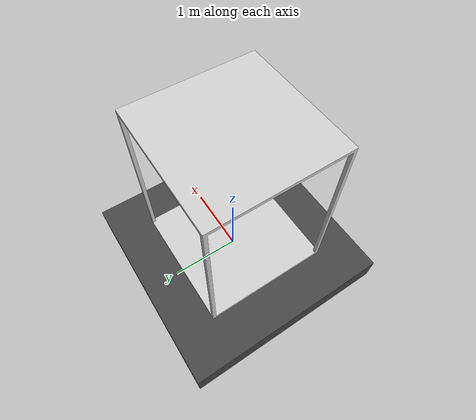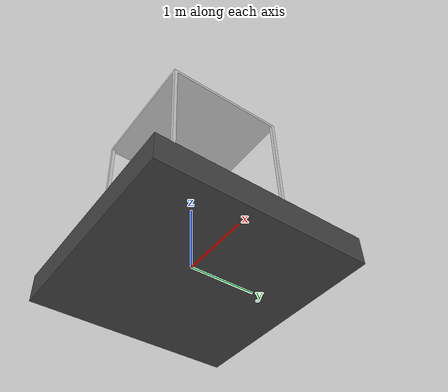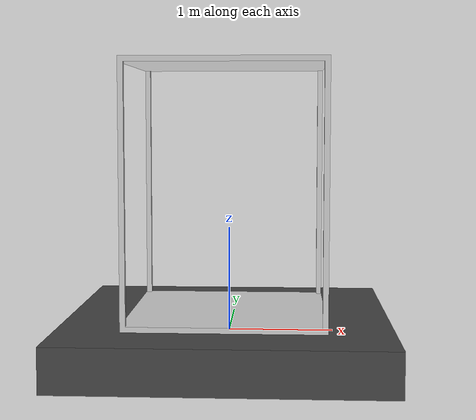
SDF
<?xml version="1.0"?>
<sdf version="1.5">
  <model name="base">
    <static>true</static>
    <pose>0 0 -0.26 0 0 0</pose>
    <link name="base_link">
      <visual name="visual">
        <geometry>
           <mesh>
            <uri>file://detect_and_deliver/base.dae</uri>
          </mesh>
        </geometry>
      </visual>
      <collision name="collision">
        <geometry>
           <mesh>
            <uri>file://detect_and_deliver/base.dae</uri>
          </mesh>
        </geometry>
      </collision>
    </link>
  </model>
</sdf>
